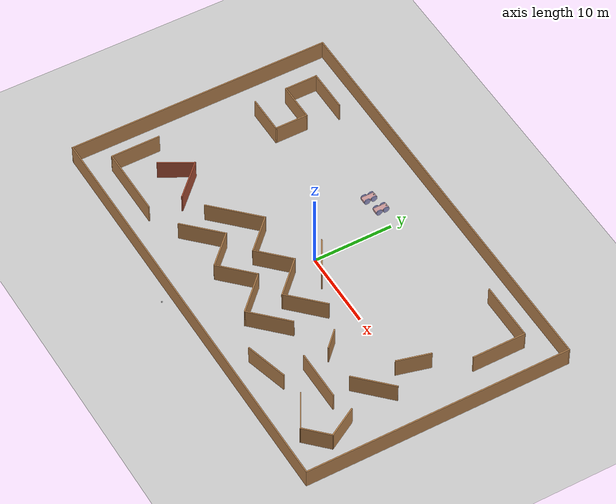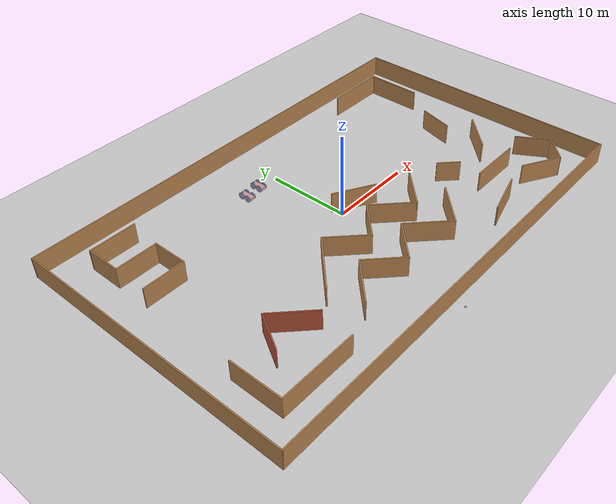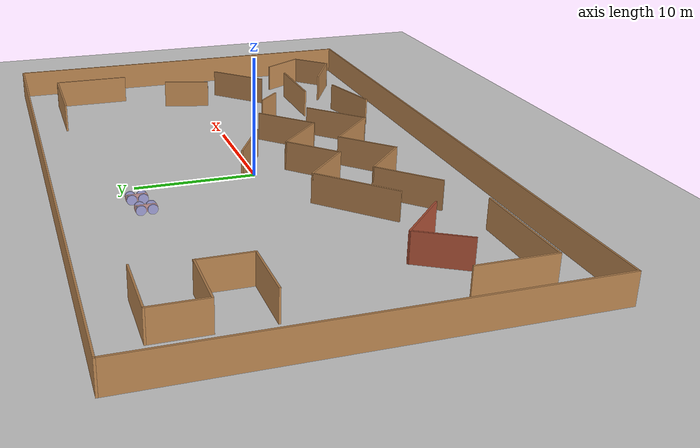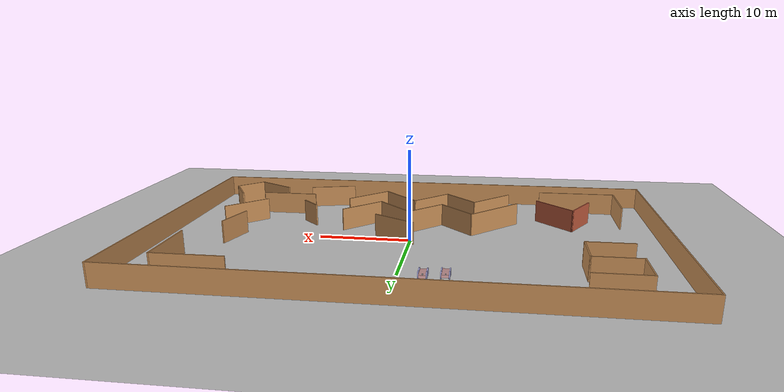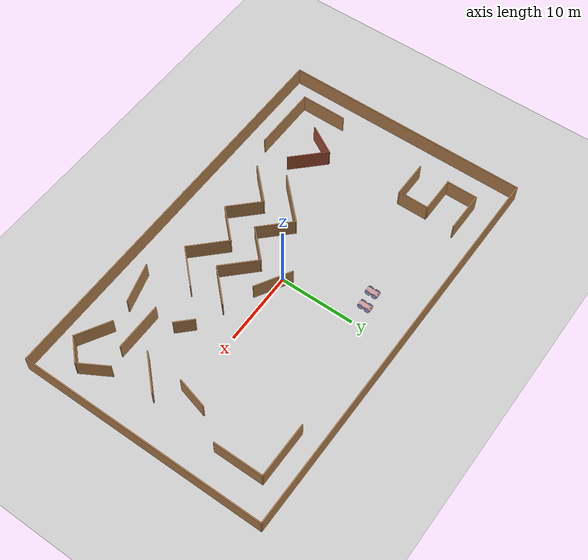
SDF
<sdf version="1.6">
 <world name="default">
  <plugin name="hello" filename="libhello.so"/>
  <light name="sun" type="directional">
   <pose>0 0 10 0 -0 0</pose>
   <diffuse>0.8 0.8 0.8 1</diffuse>
   <specular>0.2 0.2 0.2 1</specular>
   <attenuation>
    <range>1000</range>
    <constant>0.9</constant>
    <linear>0.01</linear>
    <quadratic>0.001</quadratic>
   </attenuation>
   <direction>-0.5 0.1 -0.9</direction>
  </light>
  <model name="ground_plane">
   <static>1</static>
   <link name="link">
    <collision name="collision">
     <geometry><plane><normal>0 0 1</normal><size>100 100</size></plane></geometry>
     <surface>
      <contact><collide_bitmask>65535</collide_bitmask></contact>
      <friction><ode><mu>100</mu><mu2>50</mu2></ode></friction>
     </surface>
    </collision>
    <visual name="visual">
     <cast_shadows>0</cast_shadows>
     <geometry><plane><normal>0 0 1</normal><size>100 100</size></plane></geometry>
     <material>
      <script><uri>file://media/materials/scripts/gazebo.material</uri><name>Gazebo/Grey</name></script>
     </material>
    </visual>
   </link>
  </model>
  <gravity>0 0 -9.8</gravity>
  <magnetic_field>6e-06 2.3e-05 -4.2e-05</magnetic_field>
  <atmosphere type="adiabatic"/>
  <physics name="default_physics" default="0" type="ode">
   <max_step_size>0.001</max_step_size>
   <real_time_factor>1</real_time_factor>
   <real_time_update_rate>1000</real_time_update_rate>
  </physics>
  <scene><ambient>0.4 0.4 0.4 1</ambient><background>0.7 0.7 0.7 1</background><shadows>1</shadows></scene>
  <spherical_coordinates>
   <surface_model>EARTH_WGS84</surface_model>
   <latitude_deg>0</latitude_deg>
   <longitude_deg>0</longitude_deg>
   <elevation>0</elevation>
   <heading_deg>0</heading_deg>
  </spherical_coordinates>
  <model name="Building">
   <pose>0.0233 -0.008148 0 0 -0 0</pose>
   <link name="Wall_0">
    <collision name="Wall_0_Collision">
     <geometry><box><size>33.5 0.15 2.5</size></box></geometry>
     <pose>0 0 1.25 0 -0 0</pose>
    </collision>
    <visual name="Wall_0_Visual">
     <pose>0 0 1.25 0 -0 0</pose>
     <geometry><box><size>33.5 0.15 2.5</size></box></geometry>
     <material>
      <script><uri>file://media/materials/scripts/gazebo.material</uri><name>Gazebo/Wood</name></script>
      <ambient>1 1 1 1</ambient>
     </material>
     <meta><layer>0</layer></meta>
    </visual>
    <pose>-26.925 0 0 0 0 -1.5708</pose>
   </link>
   <link name="Wall_1">
    <collision name="Wall_1_Collision">
     <geometry><box><size>54 0.15 2.5</size></box></geometry>
     <pose>0 0 1.25 0 -0 0</pose>
    </collision>
    <visual name="Wall_1_Visual">
     <pose>0 0 1.25 0 -0 0</pose>
     <geometry><box><size>54 0.15 2.5</size></box></geometry>
     <material>
      <script><uri>file://media/materials/scripts/gazebo.material</uri><name>Gazebo/Wood</name></script>
      <ambient>1 1 1 1</ambient>
     </material>
     <meta><layer>0</layer></meta>
    </visual>
    <pose>1e-06 -16.675 0 0 -0 0</pose>
   </link>
   <link name="Wall_10">
    <collision name="Wall_10_Collision">
     <geometry><box><size>4.25 0.15 2.5</size></box></geometry>
     <pose>0 0 1.25 0 -0 0</pose>
    </collision>
    <visual name="Wall_10_Visual">
     <pose>0 0 1.25 0 -0 0</pose>
     <geometry><box><size>4.25 0.15 2.5</size></box></geometry>
     <material>
      <script><uri>file://media/materials/scripts/gazebo.material</uri><name>Gazebo/Wood</name></script>
      <ambient>1 1 1 1</ambient>
     </material>
     <meta><layer>0</layer></meta>
    </visual>
    <pose>23.0574 -9.96981 0 0 -0 2.0944</pose>
   </link>
   <link name="Wall_13">
    <collision name="Wall_13_Collision">
     <geometry><box><size>5.5 0.15 2.5</size></box></geometry>
     <pose>0 0 1.25 0 -0 0</pose>
    </collision>
    <visual name="Wall_13_Visual">
     <pose>0 0 1.25 0 -0 0</pose>
     <geometry><box><size>5.5 0.15 2.5</size></box></geometry>
     <material>
      <script><uri>file://media/materials/scripts/gazebo.material</uri><name>Gazebo/Wood</name></script>
      <ambient>0.996078 0.47451 0.0196078 1</ambient>
     </material>
     <meta><layer>0</layer></meta>
    </visual>
    <pose>-19.9616 13.3063 0 0 -0 3.14159</pose>
   </link>
   <link name="Wall_14">
    <collision name="Wall_14_Collision">
     <geometry><box><size>4.25 0.15 2.5</size></box></geometry>
     <pose>0 0 1.25 0 -0 0</pose>
    </collision>
    <visual name="Wall_14_Visual">
     <pose>0 0 1.25 0 -0 0</pose>
     <geometry><box><size>4.25 0.15 2.5</size></box></geometry>
     <material>
      <script><uri>file://media/materials/scripts/gazebo.material</uri><name>Gazebo/Wood</name></script>
      <ambient>0.996078 0.47451 0.0196078 1</ambient>
     </material>
     <meta><layer>0</layer></meta>
    </visual>
    <pose>-22.6366 11.2563 0 0 0 -1.5708</pose>
   </link>
   <link name="Wall_15">
    <collision name="Wall_15_Collision">
     <geometry><box><size>5 0.15 2.5</size></box></geometry>
     <pose>0 0 1.25 0 -0 0</pose>
    </collision>
    <visual name="Wall_15_Visual">
     <pose>0 0 1.25 0 -0 0</pose>
     <geometry><box><size>5 0.15 2.5</size></box></geometry>
     <material>
      <script><uri>file://media/materials/scripts/gazebo.material</uri><name>Gazebo/Wood</name></script>
      <ambient>0.996078 0.47451 0.0196078 1</ambient>
     </material>
     <meta><layer>0</layer></meta>
    </visual>
    <pose>-20.2116 9.20626 0 0 -0 0</pose>
   </link>
   <link name="Wall_16">
    <collision name="Wall_16_Collision">
     <geometry><box><size>4.25 0.15 2.5</size></box></geometry>
     <pose>0 0 1.25 0 -0 0</pose>
    </collision>
    <visual name="Wall_16_Visual">
     <pose>0 0 1.25 0 -0 0</pose>
     <geometry><box><size>4.25 0.15 2.5</size></box></geometry>
     <material>
      <script><uri>file://media/materials/scripts/gazebo.material</uri><name>Gazebo/Wood</name></script>
      <ambient>0.996078 0.47451 0.0196078 1</ambient>
     </material>
     <meta><layer>0</layer></meta>
    </visual>
    <pose>-17.7867 7.15626 0 0 0 -1.5708</pose>
   </link>
   <link name="Wall_17">
    <collision name="Wall_17_Collision">
     <geometry><box><size>5 0.15 2.5</size></box></geometry>
     <pose>0 0 1.25 0 -0 0</pose>
    </collision>
    <visual name="Wall_17_Visual">
     <pose>0 0 1.25 0 -0 0</pose>
     <geometry><box><size>5 0.15 2.5</size></box></geometry>
     <material>
      <script><uri>file://media/materials/scripts/gazebo.material</uri><name>Gazebo/Wood</name></script>
      <ambient>0.996078 0.47451 0.0196078 1</ambient>
     </material>
     <meta><layer>0</layer></meta>
    </visual>
    <pose>-20.2116 5.10626 0 0 -0 3.14159</pose>
   </link>
   <link name="Wall_19">
    <collision name="Wall_19_Collision">
     <geometry><box><size>4.5 0.15 2.5</size></box></geometry>
     <pose>0 0 1.25 0 -0 0</pose>
    </collision>
    <visual name="Wall_19_Visual">
     <pose>0 0 1.25 0 -0 0</pose>
     <geometry><box><size>4.5 0.15 2.5</size></box></geometry>
     <material>
      <script><uri>file://media/materials/scripts/gazebo.material</uri><name>Gazebo/Bricks</name></script>
      <ambient>1 1 1 1</ambient>
     </material>
     <meta><layer>0</layer></meta>
    </visual>
    <pose>-18.9129 -7.45558 0 0 -0 1.0472</pose>
   </link>
   <link name="Wall_2">
    <collision name="Wall_2_Collision">
     <geometry><box><size>33.5 0.15 2.5</size></box></geometry>
     <pose>0 0 1.25 0 -0 0</pose>
    </collision>
    <visual name="Wall_2_Visual">
     <pose>0 0 1.25 0 -0 0</pose>
     <geometry><box><size>33.5 0.15 2.5</size></box></geometry>
     <material>
      <script><uri>file://media/materials/scripts/gazebo.material</uri><name>Gazebo/Wood</name></script>
      <ambient>1 1 1 1</ambient>
     </material>
     <meta><layer>0</layer></meta>
    </visual>
    <pose>26.925 0 0 0 -0 1.5708</pose>
   </link>
   <link name="Wall_20">
    <collision name="Wall_20_Collision">
     <geometry><box><size>5.5 0.15 2.5</size></box></geometry>
     <pose>0 0 1.25 0 -0 0</pose>
    </collision>
    <visual name="Wall_20_Visual">
     <pose>0 0 1.25 0 -0 0</pose>
     <geometry><box><size>5.5 0.15 2.5</size></box></geometry>
     <material>
      <script><uri>file://media/materials/scripts/gazebo.material</uri><name>Gazebo/Bricks</name></script>
      <ambient>1 1 1 1</ambient>
     </material>
     <meta><layer>0</layer></meta>
    </visual>
    <pose>-15.9338 -7.46349 0 0 0 -0.785398</pose>
   </link>
   <link name="Wall_22">
    <collision name="Wall_22_Collision">
     <geometry><box><size>5.75 0.15 2.5</size></box></geometry>
     <pose>0 0 1.25 0 -0 0</pose>
    </collision>
    <visual name="Wall_22_Visual">
     <pose>0 0 1.25 0 -0 0</pose>
     <geometry><box><size>5.75 0.15 2.5</size></box></geometry>
     <material>
      <script><uri>file://media/materials/scripts/gazebo.material</uri><name>Gazebo/Wood</name></script>
      <ambient>0.435294 0.796078 0.67451 1</ambient>
     </material>
     <meta><layer>0</layer></meta>
    </visual>
    <pose>-8.66284 -9.69869 0 0 -0 0.785398</pose>
   </link>
   <link name="Wall_23">
    <collision name="Wall_23_Collision">
     <geometry><box><size>5 0.15 2.5</size></box></geometry>
     <pose>0 0 1.25 0 -0 0</pose>
    </collision>
    <visual name="Wall_23_Visual">
     <pose>0 0 1.25 0 -0 0</pose>
     <geometry><box><size>5 0.15 2.5</size></box></geometry>
     <material>
      <script><uri>file://media/materials/scripts/gazebo.material</uri><name>Gazebo/Wood</name></script>
      <ambient>0.435294 0.796078 0.67451 1</ambient>
     </material>
     <meta><layer>0</layer></meta>
    </visual>
    <pose>-4.96821 -9.43353 0 0 0 -0.785398</pose>
   </link>
   <link name="Wall_24">
    <collision name="Wall_24_Collision">
     <geometry><box><size>5.25 0.15 2.5</size></box></geometry>
     <pose>0 0 1.25 0 -0 0</pose>
    </collision>
    <visual name="Wall_24_Visual">
     <pose>0 0 1.25 0 -0 0</pose>
     <geometry><box><size>5.25 0.15 2.5</size></box></geometry>
     <material>
      <script><uri>file://media/materials/scripts/gazebo.material</uri><name>Gazebo/Wood</name></script>
      <ambient>0.435294 0.796078 0.67451 1</ambient>
     </material>
     <meta><layer>0</layer></meta>
    </visual>
    <pose>-1.45035 -9.34514 0 0 -0 0.785398</pose>
   </link>
   <link name="Wall_25">
    <collision name="Wall_25_Collision">
     <geometry><box><size>5.75 0.15 2.5</size></box></geometry>
     <pose>0 0 1.25 0 -0 0</pose>
    </collision>
    <visual name="Wall_25_Visual">
     <pose>0 0 1.25 0 -0 0</pose>
     <geometry><box><size>5.75 0.15 2.5</size></box></geometry>
     <material>
      <script><uri>file://media/materials/scripts/gazebo.material</uri><name>Gazebo/Wood</name></script>
      <ambient>0.435294 0.796078 0.67451 1</ambient>
     </material>
     <meta><layer>0</layer></meta>
    </visual>
    <pose>2.33267 -9.52192 0 0 0 -0.785398</pose>
   </link>
   <link name="Wall_26">
    <collision name="Wall_26_Collision">
     <geometry><box><size>5.75 0.15 2.5</size></box></geometry>
     <pose>0 0 1.25 0 -0 0</pose>
    </collision>
    <visual name="Wall_26_Visual">
     <pose>0 0 1.25 0 -0 0</pose>
     <geometry><box><size>5.75 0.15 2.5</size></box></geometry>
     <material>
      <script><uri>file://media/materials/scripts/gazebo.material</uri><name>Gazebo/Wood</name></script>
      <ambient>0.435294 0.796078 0.67451 1</ambient>
     </material>
     <meta><layer>0</layer></meta>
    </visual>
    <pose>6.29247 -9.52192 0 0 -0 0.785398</pose>
   </link>
   <link name="Wall_29">
    <collision name="Wall_29_Collision">
     <geometry><box><size>7.25 0.15 2.5</size></box></geometry>
     <pose>0 0 1.25 0 -0 0</pose>
    </collision>
    <visual name="Wall_29_Visual">
     <pose>0 0 1.25 0 -0 0</pose>
     <geometry><box><size>7.25 0.15 2.5</size></box></geometry>
     <material>
      <script><uri>file://media/materials/scripts/gazebo.material</uri><name>Gazebo/Wood</name></script>
      <ambient>0.435294 0.796078 0.67451 1</ambient>
     </material>
     <meta><layer>0</layer></meta>
    </visual>
    <pose>-9.06827 -5.23816 0 0 -0 0.785398</pose>
   </link>
   <link name="Wall_3">
    <collision name="Wall_3_Collision">
     <geometry><box><size>54 0.15 2.5</size></box></geometry>
     <pose>0 0 1.25 0 -0 0</pose>
    </collision>
    <visual name="Wall_3_Visual">
     <pose>0 0 1.25 0 -0 0</pose>
     <geometry><box><size>54 0.15 2.5</size></box></geometry>
     <material>
      <script><uri>file://media/materials/scripts/gazebo.material</uri><name>Gazebo/Wood</name></script>
      <ambient>1 1 1 1</ambient>
     </material>
     <meta><layer>0</layer></meta>
    </visual>
    <pose>1e-06 16.675 0 0 -0 3.14159</pose>
   </link>
   <link name="Wall_30">
    <collision name="Wall_30_Collision">
     <geometry><box><size>5.25 0.15 2.5</size></box></geometry>
     <pose>0 0 1.25 0 -0 0</pose>
    </collision>
    <visual name="Wall_30_Visual">
     <pose>0 0 1.25 0 -0 0</pose>
     <geometry><box><size>5.25 0.15 2.5</size></box></geometry>
     <material>
      <script><uri>file://media/materials/scripts/gazebo.material</uri><name>Gazebo/Wood</name></script>
      <ambient>0.435294 0.796078 0.67451 1</ambient>
     </material>
     <meta><layer>0</layer></meta>
    </visual>
    <pose>-4.75492 -4.53106 0 0 0 -0.785398</pose>
   </link>
   <link name="Wall_31">
    <collision name="Wall_31_Collision">
     <geometry><box><size>5 0.15 2.5</size></box></geometry>
     <pose>0 0 1.25 0 -0 0</pose>
    </collision>
    <visual name="Wall_31_Visual">
     <pose>0 0 1.25 0 -0 0</pose>
     <geometry><box><size>5 0.15 2.5</size></box></geometry>
     <material>
      <script><uri>file://media/materials/scripts/gazebo.material</uri><name>Gazebo/Wood</name></script>
      <ambient>0.435294 0.796078 0.67451 1</ambient>
     </material>
     <meta><layer>0</layer></meta>
    </visual>
    <pose>-1.23706 -4.61944 0 0 -0 0.785398</pose>
   </link>
   <link name="Wall_32">
    <collision name="Wall_32_Collision">
     <geometry><box><size>5.5 0.15 2.5</size></box></geometry>
     <pose>0 0 1.25 0 -0 0</pose>
    </collision>
    <visual name="Wall_32_Visual">
     <pose>0 0 1.25 0 -0 0</pose>
     <geometry><box><size>5.5 0.15 2.5</size></box></geometry>
     <material>
      <script><uri>file://media/materials/scripts/gazebo.material</uri><name>Gazebo/Wood</name></script>
      <ambient>0.435294 0.796078 0.67451 1</ambient>
     </material>
     <meta><layer>0</layer></meta>
    </visual>
    <pose>2.36918 -4.79622 0 0 0 -0.785398</pose>
   </link>
   <link name="Wall_33">
    <collision name="Wall_33_Collision">
     <geometry><box><size>5.5 0.15 2.5</size></box></geometry>
     <pose>0 0 1.25 0 -0 0</pose>
    </collision>
    <visual name="Wall_33_Visual">
     <pose>0 0 1.25 0 -0 0</pose>
     <geometry><box><size>5.5 0.15 2.5</size></box></geometry>
     <material>
      <script><uri>file://media/materials/scripts/gazebo.material</uri><name>Gazebo/Wood</name></script>
      <ambient>0.435294 0.796078 0.67451 1</ambient>
     </material>
     <meta><layer>0</layer></meta>
    </visual>
    <pose>6.1522 -4.79622 0 0 -0 0.785398</pose>
   </link>
   <link name="Wall_35">
    <collision name="Wall_35_Collision">
     <geometry><box><size>5.5 0.15 2.5</size></box></geometry>
     <pose>0 0 1.25 0 -0 0</pose>
    </collision>
    <visual name="Wall_35_Visual">
     <pose>0 0 1.25 0 -0 0</pose>
     <geometry><box><size>5.5 0.15 2.5</size></box></geometry>
     <material>
      <script><uri>file://media/materials/scripts/gazebo.material</uri><name>Gazebo/Wood</name></script>
      <ambient>1 1 1 1</ambient>
     </material>
     <meta><layer>0</layer></meta>
    </visual>
    <pose>19.9767 -4.17251 0 0 -0 0.785398</pose>
   </link>
   <link name="Wall_37">
    <collision name="Wall_37_Collision">
     <geometry><box><size>6.5 0.15 2.5</size></box></geometry>
     <pose>0 0 1.25 0 -0 0</pose>
    </collision>
    <visual name="Wall_37_Visual">
     <pose>0 0 1.25 0 -0 0</pose>
     <geometry><box><size>6.5 0.15 2.5</size></box></geometry>
     <material>
      <script><uri>file://media/materials/scripts/gazebo.material</uri><name>Gazebo/Wood</name></script>
      <ambient>1 1 1 1</ambient>
     </material>
     <meta><layer>0</layer></meta>
    </visual>
    <pose>16.2202 -8.96488 0 0 -0 3.14159</pose>
   </link>
   <link name="Wall_39">
    <collision name="Wall_39_Collision">
     <geometry><box><size>5.5 0.15 2.5</size></box></geometry>
     <pose>0 0 1.25 0 -0 0</pose>
    </collision>
    <visual name="Wall_39_Visual">
     <pose>0 0 1.25 0 -0 0</pose>
     <geometry><box><size>5.5 0.15 2.5</size></box></geometry>
     <material>
      <script><uri>file://media/materials/scripts/gazebo.material</uri><name>Gazebo/Wood</name></script>
      <ambient>1 1 1 1</ambient>
     </material>
     <meta><layer>0</layer></meta>
    </visual>
    <pose>11.6647 -12.9324 0 0 0 -2.87979</pose>
   </link>
   <link name="Wall_41">
    <collision name="Wall_41_Collision">
     <geometry><box><size>2.75 0.15 2.5</size></box></geometry>
     <pose>0 0 1.25 0 -0 0</pose>
    </collision>
    <visual name="Wall_41_Visual">
     <pose>0 0 1.25 0 -0 0</pose>
     <geometry><box><size>2.75 0.15 2.5</size></box></geometry>
     <material>
      <script><uri>file://media/materials/scripts/gazebo.material</uri><name>Gazebo/Wood</name></script>
      <ambient>1 1 1 1</ambient>
     </material>
     <meta><layer>0</layer></meta>
    </visual>
    <pose>12.4871 -5.14478 0 0 -0 2.35619</pose>
   </link>
   <link name="Wall_43">
    <collision name="Wall_43_Collision">
     <geometry><box><size>4.25 0.15 2.5</size></box></geometry>
     <pose>0 0 1.25 0 -0 0</pose>
    </collision>
    <visual name="Wall_43_Visual">
     <pose>0 0 1.25 0 -0 0</pose>
     <geometry><box><size>4.25 0.15 2.5</size></box></geometry>
     <material>
      <script><uri>file://media/materials/scripts/gazebo.material</uri><name>Gazebo/Wood</name></script>
      <ambient>1 1 1 1</ambient>
     </material>
     <meta><layer>0</layer></meta>
    </visual>
    <pose>19.2708 1.34355 0 0 -0 1.309</pose>
   </link>
   <link name="Wall_45">
    <collision name="Wall_45_Collision">
     <geometry><box><size>5.25 0.15 2.5</size></box></geometry>
     <pose>0 0 1.25 0 -0 0</pose>
    </collision>
    <visual name="Wall_45_Visual">
     <pose>0 0 1.25 0 -0 0</pose>
     <geometry><box><size>5.25 0.15 2.5</size></box></geometry>
     <material>
      <script><uri>file://media/materials/scripts/gazebo.material</uri><name>Gazebo/Wood</name></script>
      <ambient>1 1 1 1</ambient>
     </material>
     <meta><layer>0</layer></meta>
    </visual>
    <pose>1.76543 -0.133651 0 0 0 -0.523599</pose>
   </link>
   <link name="Wall_48">
    <collision name="Wall_48_Collision">
     <geometry><box><size>6.75 0.15 2.5</size></box></geometry>
     <pose>0 0 1.25 0 -0 0</pose>
    </collision>
    <visual name="Wall_48_Visual">
     <pose>0 0 1.25 0 -0 0</pose>
     <geometry><box><size>6.75 0.15 2.5</size></box></geometry>
     <material>
      <script><uri>file://media/materials/scripts/gazebo.material</uri><name>Gazebo/Wood</name></script>
      <ambient>0.996078 0.47451 0.0196078 1</ambient>
     </material>
     <meta><layer>0</layer></meta>
    </visual>
    <pose>22.5768 10.3367 0 0 -0 1.5708</pose>
   </link>
   <link name="Wall_49">
    <collision name="Wall_49_Collision">
     <geometry><box><size>7.5 0.15 2.5</size></box></geometry>
     <pose>0 0 1.25 0 -0 0</pose>
    </collision>
    <visual name="Wall_49_Visual">
     <pose>0 0 1.25 0 -0 0</pose>
     <geometry><box><size>7.5 0.15 2.5</size></box></geometry>
     <material>
      <script><uri>file://media/materials/scripts/gazebo.material</uri><name>Gazebo/Wood</name></script>
      <ambient>0.996078 0.47451 0.0196078 1</ambient>
     </material>
     <meta><layer>0</layer></meta>
    </visual>
    <pose>18.9018 13.6367 0 0 -0 3.14159</pose>
   </link>
   <link name="Wall_5">
    <collision name="Wall_5_Collision">
     <geometry><box><size>6.25 0.15 2.5</size></box></geometry>
     <pose>0 0 1.25 0 -0 0</pose>
    </collision>
    <visual name="Wall_5_Visual">
     <pose>0 0 1.25 0 -0 0</pose>
     <geometry><box><size>6.25 0.15 2.5</size></box></geometry>
     <material>
      <script><uri>file://media/materials/scripts/gazebo.material</uri><name>Gazebo/Wood</name></script>
      <ambient>1 1 1 1</ambient>
     </material>
     <meta><layer>0</layer></meta>
    </visual>
    <pose>-23.4627 -10.3305 0 0 0 -1.5708</pose>
   </link>
   <link name="Wall_6">
    <collision name="Wall_6_Collision">
     <geometry><box><size>9 0.15 2.5</size></box></geometry>
     <pose>0 0 1.25 0 -0 0</pose>
    </collision>
    <visual name="Wall_6_Visual">
     <pose>0 0 1.25 0 -0 0</pose>
     <geometry><box><size>9 0.15 2.5</size></box></geometry>
     <material>
      <script><uri>file://media/materials/scripts/gazebo.material</uri><name>Gazebo/Wood</name></script>
      <ambient>1 1 1 1</ambient>
     </material>
     <meta><layer>0</layer></meta>
    </visual>
    <pose>-19.0377 -13.3805 0 0 -0 0</pose>
   </link>
   <link name="Wall_8">
    <collision name="Wall_8_Collision">
     <geometry><box><size>5 0.15 2.5</size></box></geometry>
     <pose>0 0 1.25 0 -0 0</pose>
    </collision>
    <visual name="Wall_8_Visual">
     <pose>0 0 1.25 0 -0 0</pose>
     <geometry><box><size>5 0.15 2.5</size></box></geometry>
     <material>
      <script><uri>file://media/materials/scripts/gazebo.material</uri><name>Gazebo/Wood</name></script>
      <ambient>1 1 1 1</ambient>
     </material>
     <meta><layer>0</layer></meta>
    </visual>
    <pose>19.4367 -13.0782 0 0 0 -0.523599</pose>
   </link>
   <link name="Wall_9">
    <collision name="Wall_9_Collision">
     <geometry><box><size>3.75 0.15 2.5</size></box></geometry>
     <pose>0 0 1.25 0 -0 0</pose>
    </collision>
    <visual name="Wall_9_Visual">
     <pose>0 0 1.25 0 -0 0</pose>
     <geometry><box><size>3.75 0.15 2.5</size></box></geometry>
     <material>
      <script><uri>file://media/materials/scripts/gazebo.material</uri><name>Gazebo/Wood</name></script>
      <ambient>1 1 1 1</ambient>
     </material>
     <meta><layer>0</layer></meta>
    </visual>
    <pose>22.8096 -13.018 0 0 -0 0.785398</pose>
   </link>
   <static>1</static>
  </model>
  <model name="Robot">
   <link name="link_0">
    <pose>0.00675 -0.118334 -0.032195 0 -0 0</pose>
    <inertial>
     <mass>0.306123</mass>
     <inertia>
      <ixx>0.0616903</ixx>
      <ixy>0</ixy>
      <ixz>0</ixz>
      <iyy>0.0154129</iyy>
      <iyz>0</iyz>
      <izz>0.0732404</izz>
     </inertia>
    </inertial>
    <visual name="visual">
     <geometry><box><size>0.7 1.7 0.3</size></box></geometry>
     <material>
      <lighting>1</lighting>
      <script><uri>file://media/materials/scripts/gazebo.material</uri><name>Gazebo/Grey</name></script>
      <shader type="pixel"><normal_map>__default__</normal_map></shader>
      <ambient>0.4 0.2 0.2 1</ambient>
      <diffuse>0.8 0.6 0.6 1</diffuse>
      <specular>0.11 0 0 1</specular>
      <emissive>0 0 0 1</emissive>
     </material>
    </visual>
    <collision name="collision">
     <geometry><box><size>0.7 1.7 0.3</size></box></geometry>
     <surface>
      <friction>
       <ode><mu>1</mu><mu2>1</mu2><fdir1>0 0 0</fdir1><slip1>0</slip1><slip2>0</slip2></ode>
       <torsional>
        <coefficient>1</coefficient>
        <patch_radius>0</patch_radius>
        <surface_radius>0</surface_radius>
        <use_patch_radius>1</use_patch_radius>
        <ode><slip>0</slip></ode>
       </torsional>
      </friction>
      <bounce><restitution_coefficient>0</restitution_coefficient><threshold>1e+06</threshold></bounce>
      <contact>
       <collide_without_contact>0</collide_without_contact>
       <collide_without_contact_bitmask>1</collide_without_contact_bitmask>
       <collide_bitmask>1</collide_bitmask>
       <ode>
        <soft_cfm>0</soft_cfm>
        <soft_erp>0.2</soft_erp>
        <kp>1e+13</kp>
        <kd>1</kd>
        <max_vel>0.01</max_vel>
        <min_depth>0</min_depth>
       </ode>
       <bullet>
        <split_impulse>1</split_impulse>
        <split_impulse_penetration_threshold>-0.01</split_impulse_penetration_threshold>
        <soft_cfm>0</soft_cfm>
        <soft_erp>0.2</soft_erp>
        <kp>1e+13</kp>
        <kd>1</kd>
       </bullet>
      </contact>
     </surface>
    </collision>
   </link>
   <link name="link_1_clone">
    <pose>-0.393289 -0.568334 -0.032195 0 1.5707 0</pose>
    <inertial>
     <mass>1</mass>
     <inertia><ixx>0.145833</ixx><ixy>0</ixy><ixz>0</ixz><iyy>0.145833</iyy><iyz>0</iyz><izz>0.125</izz></inertia>
    </inertial>
    <visual name="visual">
     <geometry><cylinder><radius>0.4</radius><length>0.1</length></cylinder></geometry>
     <material>
      <lighting>1</lighting>
      <script><uri>file://media/materials/scripts/gazebo.material</uri><name>Gazebo/Grey</name></script>
      <shader type="pixel"><normal_map>__default__</normal_map></shader>
      <ambient>0.2 0.2 0.4 1</ambient>
      <diffuse>0.6 0.6 0.8 1</diffuse>
      <specular>0 0 0.11 1</specular>
      <emissive>0 0 0 1</emissive>
     </material>
    </visual>
    <collision name="collision">
     <geometry><cylinder><radius>0.4</radius><length>0.1</length></cylinder></geometry>
     <surface>
      <friction>
       <ode><mu>1</mu><mu2>1</mu2><fdir1>0 0 0</fdir1><slip1>0</slip1><slip2>0</slip2></ode>
       <torsional>
        <coefficient>1</coefficient>
        <patch_radius>0</patch_radius>
        <surface_radius>0</surface_radius>
        <use_patch_radius>1</use_patch_radius>
        <ode><slip>0</slip></ode>
       </torsional>
      </friction>
      <bounce><restitution_coefficient>0</restitution_coefficient><threshold>1e+06</threshold></bounce>
      <contact>
       <collide_without_contact>0</collide_without_contact>
       <collide_without_contact_bitmask>1</collide_without_contact_bitmask>
       <collide_bitmask>1</collide_bitmask>
       <ode>
        <soft_cfm>0</soft_cfm>
        <soft_erp>0.2</soft_erp>
        <kp>1e+13</kp>
        <kd>1</kd>
        <max_vel>0.01</max_vel>
        <min_depth>0</min_depth>
       </ode>
       <bullet>
        <split_impulse>1</split_impulse>
        <split_impulse_penetration_threshold>-0.01</split_impulse_penetration_threshold>
        <soft_cfm>0</soft_cfm>
        <soft_erp>0.2</soft_erp>
        <kp>1e+13</kp>
        <kd>1</kd>
       </bullet>
      </contact>
     </surface>
    </collision>
   </link>
   <link name="link_1_clone_0">
    <pose>-0.393289 0.331666 -0.032195 0 1.5707 0</pose>
    <inertial>
     <mass>1</mass>
     <inertia><ixx>0.145833</ixx><ixy>0</ixy><ixz>0</ixz><iyy>0.145833</iyy><iyz>0</iyz><izz>0.125</izz></inertia>
    </inertial>
    <visual name="visual">
     <geometry><cylinder><radius>0.4</radius><length>0.1</length></cylinder></geometry>
     <material>
      <lighting>1</lighting>
      <script><uri>file://media/materials/scripts/gazebo.material</uri><name>Gazebo/Grey</name></script>
      <shader type="pixel"><normal_map>__default__</normal_map></shader>
      <ambient>0.2 0.2 0.4 1</ambient>
      <diffuse>0.6 0.6 0.8 1</diffuse>
      <specular>0 0 0.11 1</specular>
      <emissive>0 0 0 1</emissive>
     </material>
    </visual>
    <collision name="collision">
     <geometry><cylinder><radius>0.4</radius><length>0.1</length></cylinder></geometry>
     <surface>
      <friction>
       <ode><mu>1</mu><mu2>1</mu2><fdir1>0 0 0</fdir1><slip1>0</slip1><slip2>0</slip2></ode>
       <torsional>
        <coefficient>1</coefficient>
        <patch_radius>0</patch_radius>
        <surface_radius>0</surface_radius>
        <use_patch_radius>1</use_patch_radius>
        <ode><slip>0</slip></ode>
       </torsional>
      </friction>
      <bounce><restitution_coefficient>0</restitution_coefficient><threshold>1e+06</threshold></bounce>
      <contact>
       <collide_without_contact>0</collide_without_contact>
       <collide_without_contact_bitmask>1</collide_without_contact_bitmask>
       <collide_bitmask>1</collide_bitmask>
       <ode>
        <soft_cfm>0</soft_cfm>
        <soft_erp>0.2</soft_erp>
        <kp>1e+13</kp>
        <kd>1</kd>
        <max_vel>0.01</max_vel>
        <min_depth>0</min_depth>
       </ode>
       <bullet>
        <split_impulse>1</split_impulse>
        <split_impulse_penetration_threshold>-0.01</split_impulse_penetration_threshold>
        <soft_cfm>0</soft_cfm>
        <soft_erp>0.2</soft_erp>
        <kp>1e+13</kp>
        <kd>1</kd>
       </bullet>
      </contact>
     </surface>
    </collision>
   </link>
   <link name="link_1_clone_1">
    <pose>0.406789 -0.568334 -0.032195 0 1.5707 0</pose>
    <inertial>
     <mass>1</mass>
     <inertia><ixx>0.145833</ixx><ixy>0</ixy><ixz>0</ixz><iyy>0.145833</iyy><iyz>0</iyz><izz>0.125</izz></inertia>
    </inertial>
    <visual name="visual">
     <geometry><cylinder><radius>0.4</radius><length>0.1</length></cylinder></geometry>
     <material>
      <lighting>1</lighting>
      <script><uri>file://media/materials/scripts/gazebo.material</uri><name>Gazebo/Grey</name></script>
      <shader type="pixel"><normal_map>__default__</normal_map></shader>
      <ambient>0.2 0.2 0.4 1</ambient>
      <diffuse>0.6 0.6 0.8 1</diffuse>
      <specular>0 0 0.11 1</specular>
      <emissive>0 0 0 1</emissive>
     </material>
    </visual>
    <collision name="collision">
     <geometry><cylinder><radius>0.4</radius><length>0.1</length></cylinder></geometry>
     <surface>
      <friction>
       <ode><mu>1</mu><mu2>1</mu2><fdir1>0 0 0</fdir1><slip1>0</slip1><slip2>0</slip2></ode>
       <torsional>
        <coefficient>1</coefficient>
        <patch_radius>0</patch_radius>
        <surface_radius>0</surface_radius>
        <use_patch_radius>1</use_patch_radius>
        <ode><slip>0</slip></ode>
       </torsional>
      </friction>
      <bounce><restitution_coefficient>0</restitution_coefficient><threshold>1e+06</threshold></bounce>
      <contact>
       <collide_without_contact>0</collide_without_contact>
       <collide_without_contact_bitmask>1</collide_without_contact_bitmask>
       <collide_bitmask>1</collide_bitmask>
       <ode>
        <soft_cfm>0</soft_cfm>
        <soft_erp>0.2</soft_erp>
        <kp>1e+13</kp>
        <kd>1</kd>
        <max_vel>0.01</max_vel>
        <min_depth>0</min_depth>
       </ode>
       <bullet>
        <split_impulse>1</split_impulse>
        <split_impulse_penetration_threshold>-0.01</split_impulse_penetration_threshold>
        <soft_cfm>0</soft_cfm>
        <soft_erp>0.2</soft_erp>
        <kp>1e+13</kp>
        <kd>1</kd>
       </bullet>
      </contact>
     </surface>
    </collision>
   </link>
   <link name="link_1_clone_2">
    <pose>0.406789 0.331666 -0.032195 0 1.5707 0</pose>
    <inertial>
     <mass>1</mass>
     <inertia><ixx>0.145833</ixx><ixy>0</ixy><ixz>0</ixz><iyy>0.145833</iyy><iyz>0</iyz><izz>0.125</izz></inertia>
    </inertial>
    <visual name="visual">
     <geometry><cylinder><radius>0.4</radius><length>0.1</length></cylinder></geometry>
     <material>
      <lighting>1</lighting>
      <script><uri>file://media/materials/scripts/gazebo.material</uri><name>Gazebo/Grey</name></script>
      <shader type="pixel"><normal_map>__default__</normal_map></shader>
      <ambient>0.2 0.2 0.4 1</ambient>
      <diffuse>0.6 0.6 0.8 1</diffuse>
      <specular>0 0 0.11 1</specular>
      <emissive>0 0 0 1</emissive>
     </material>
    </visual>
    <collision name="collision">
     <geometry><cylinder><radius>0.4</radius><length>0.1</length></cylinder></geometry>
     <surface>
      <friction>
       <ode><mu>1</mu><mu2>1</mu2><fdir1>0 0 0</fdir1><slip1>0</slip1><slip2>0</slip2></ode>
       <torsional>
        <coefficient>1</coefficient>
        <patch_radius>0</patch_radius>
        <surface_radius>0</surface_radius>
        <use_patch_radius>1</use_patch_radius>
        <ode><slip>0</slip></ode>
       </torsional>
      </friction>
      <bounce><restitution_coefficient>0</restitution_coefficient><threshold>1e+06</threshold></bounce>
      <contact>
       <collide_without_contact>0</collide_without_contact>
       <collide_without_contact_bitmask>1</collide_without_contact_bitmask>
       <collide_bitmask>1</collide_bitmask>
       <ode>
        <soft_cfm>0</soft_cfm>
        <soft_erp>0.2</soft_erp>
        <kp>1e+13</kp>
        <kd>1</kd>
        <max_vel>0.01</max_vel>
        <min_depth>0</min_depth>
       </ode>
       <bullet>
        <split_impulse>1</split_impulse>
        <split_impulse_penetration_threshold>-0.01</split_impulse_penetration_threshold>
        <soft_cfm>0</soft_cfm>
        <soft_erp>0.2</soft_erp>
        <kp>1e+13</kp>
        <kd>1</kd>
       </bullet>
      </contact>
     </surface>
    </collision>
   </link>
   <link name="link_2">
    <pose>-0.033751 0.591666 0.160974 0 -0 0</pose>
    <inertial>
     <mass>0.00134124</mass>
     <inertia>
      <ixx>2.76975e-06</ixx>
      <ixy>0</ixy>
      <ixz>0</ixz>
      <iyy>2.38931e-06</iyy>
      <iyz>0</iyz>
      <izz>3.49279e-06</izz>
     </inertia>
    </inertial>
    <visual name="visual">
     <geometry><box><size>0.117996 0.131631 0.086336</size></box></geometry>
     <material>
      <lighting>1</lighting>
      <script><uri>file://media/materials/scripts/gazebo.material</uri><name>Gazebo/Grey</name></script>
      <shader type="pixel"/>
      <ambient>0.3 0.3 0.3 1</ambient>
      <diffuse>0.7 0.7 0.7 1</diffuse>
      <specular>0.01 0.01 0.01 1</specular>
      <emissive>0 0 0 1</emissive>
     </material>
    </visual>
    <collision name="collision">
     <geometry><box><size>0.117996 0.131631 0.086336</size></box></geometry>
     <surface>
      <friction>
       <ode><mu>1</mu><mu2>1</mu2><fdir1>0 0 0</fdir1><slip1>0</slip1><slip2>0</slip2></ode>
       <torsional>
        <coefficient>1</coefficient>
        <patch_radius>0</patch_radius>
        <surface_radius>0</surface_radius>
        <use_patch_radius>1</use_patch_radius>
        <ode><slip>0</slip></ode>
       </torsional>
      </friction>
      <bounce><restitution_coefficient>0</restitution_coefficient><threshold>1e+06</threshold></bounce>
      <contact>
       <collide_without_contact>0</collide_without_contact>
       <collide_without_contact_bitmask>1</collide_without_contact_bitmask>
       <collide_bitmask>1</collide_bitmask>
       <ode>
        <soft_cfm>0</soft_cfm>
        <soft_erp>0.2</soft_erp>
        <kp>1e+13</kp>
        <kd>1</kd>
        <max_vel>0.01</max_vel>
        <min_depth>0</min_depth>
       </ode>
       <bullet>
        <split_impulse>1</split_impulse>
        <split_impulse_penetration_threshold>-0.01</split_impulse_penetration_threshold>
        <soft_cfm>0</soft_cfm>
        <soft_erp>0.2</soft_erp>
        <kp>1e+13</kp>
        <kd>1</kd>
       </bullet>
      </contact>
     </surface>
    </collision>
   </link>
   <joint name="link_0_JOINT_2" type="revolute">
    <parent>link_0</parent>
    <child>link_1_clone_0</child>
    <axis>
     <xyz>0 0 1</xyz>
     <use_parent_model_frame>0</use_parent_model_frame>
     <limit>
      <lower>-1.79769e+308</lower>
      <upper>1.79769e+308</upper>
      <effort>-1</effort>
      <velocity>-1</velocity>
     </limit>
     <dynamics>
      <spring_reference>0</spring_reference>
      <spring_stiffness>0</spring_stiffness>
      <damping>0</damping>
     </dynamics>
    </axis>
    <physics>
     <ode><limit><cfm>0</cfm><erp>0.2</erp></limit><suspension><cfm>0</cfm><erp>0.2</erp></suspension></ode>
    </physics>
   </joint>
   <joint name="link_0_JOINT_3" type="revolute">
    <parent>link_0</parent>
    <child>link_1_clone</child>
    <axis>
     <xyz>0 0 1</xyz>
     <use_parent_model_frame>0</use_parent_model_frame>
     <limit>
      <lower>-1.79769e+308</lower>
      <upper>1.79769e+308</upper>
      <effort>-1</effort>
      <velocity>-1</velocity>
     </limit>
     <dynamics>
      <spring_reference>0</spring_reference>
      <spring_stiffness>0</spring_stiffness>
      <damping>0</damping>
     </dynamics>
    </axis>
    <physics>
     <ode><limit><cfm>0</cfm><erp>0.2</erp></limit><suspension><cfm>0</cfm><erp>0.2</erp></suspension></ode>
    </physics>
   </joint>
   <joint name="link_0_JOINT_4" type="revolute">
    <parent>link_0</parent>
    <child>link_1_clone_2</child>
    <axis>
     <xyz>0 0 1</xyz>
     <use_parent_model_frame>0</use_parent_model_frame>
     <limit>
      <lower>-1.79769e+308</lower>
      <upper>1.79769e+308</upper>
      <effort>-1</effort>
      <velocity>-1</velocity>
     </limit>
     <dynamics>
      <spring_reference>0</spring_reference>
      <spring_stiffness>0</spring_stiffness>
      <damping>0</damping>
     </dynamics>
    </axis>
    <physics>
     <ode><limit><cfm>0</cfm><erp>0.2</erp></limit><suspension><cfm>0</cfm><erp>0.2</erp></suspension></ode>
    </physics>
   </joint>
   <joint name="link_0_JOINT_5" type="revolute">
    <parent>link_0</parent>
    <child>link_1_clone_1</child>
    <axis>
     <xyz>0 0 1</xyz>
     <use_parent_model_frame>0</use_parent_model_frame>
     <limit>
      <lower>-1.79769e+308</lower>
      <upper>1.79769e+308</upper>
      <effort>-1</effort>
      <velocity>-1</velocity>
     </limit>
     <dynamics>
      <spring_reference>0</spring_reference>
      <spring_stiffness>0</spring_stiffness>
      <damping>0</damping>
     </dynamics>
    </axis>
    <physics>
     <ode><limit><cfm>0</cfm><erp>0.2</erp></limit><suspension><cfm>0</cfm><erp>0.2</erp></suspension></ode>
    </physics>
   </joint>
   <joint name="link_0_JOINT_6" type="fixed">
    <parent>link_0</parent>
    <child>link_2</child>
    <physics>
     <ode><limit><cfm>0</cfm><erp>0.2</erp></limit><suspension><cfm>0</cfm><erp>0.2</erp></suspension></ode>
    </physics>
   </joint>
   <static>0</static>
   <pose>-4.69109 10.0073 0.432199 1e-06 -0 -2.9e-05</pose>
  </model>
  <model name="Robot_0">
   <link name="link_0">
    <pose>0.00675 -0.118334 -0.032195 0 -0 0</pose>
    <inertial>
     <mass>0.306123</mass>
     <inertia>
      <ixx>0.0616903</ixx>
      <ixy>0</ixy>
      <ixz>0</ixz>
      <iyy>0.0154129</iyy>
      <iyz>0</iyz>
      <izz>0.0732404</izz>
     </inertia>
    </inertial>
    <visual name="visual">
     <geometry><box><size>0.7 1.7 0.3</size></box></geometry>
     <material>
      <lighting>1</lighting>
      <script><uri>file://media/materials/scripts/gazebo.material</uri><name>Gazebo/Grey</name></script>
      <shader type="pixel"><normal_map>__default__</normal_map></shader>
      <ambient>0.4 0.2 0.2 1</ambient>
      <diffuse>0.8 0.6 0.6 1</diffuse>
      <specular>0.11 0 0 1</specular>
      <emissive>0 0 0 1</emissive>
     </material>
    </visual>
    <collision name="collision">
     <geometry><box><size>0.7 1.7 0.3</size></box></geometry>
     <surface>
      <friction>
       <ode><mu>1</mu><mu2>1</mu2><fdir1>0 0 0</fdir1><slip1>0</slip1><slip2>0</slip2></ode>
       <torsional>
        <coefficient>1</coefficient>
        <patch_radius>0</patch_radius>
        <surface_radius>0</surface_radius>
        <use_patch_radius>1</use_patch_radius>
        <ode><slip>0</slip></ode>
       </torsional>
      </friction>
      <bounce><restitution_coefficient>0</restitution_coefficient><threshold>1e+06</threshold></bounce>
      <contact>
       <collide_without_contact>0</collide_without_contact>
       <collide_without_contact_bitmask>1</collide_without_contact_bitmask>
       <collide_bitmask>1</collide_bitmask>
       <ode>
        <soft_cfm>0</soft_cfm>
        <soft_erp>0.2</soft_erp>
        <kp>1e+13</kp>
        <kd>1</kd>
        <max_vel>0.01</max_vel>
        <min_depth>0</min_depth>
       </ode>
       <bullet>
        <split_impulse>1</split_impulse>
        <split_impulse_penetration_threshold>-0.01</split_impulse_penetration_threshold>
        <soft_cfm>0</soft_cfm>
        <soft_erp>0.2</soft_erp>
        <kp>1e+13</kp>
        <kd>1</kd>
       </bullet>
      </contact>
     </surface>
    </collision>
   </link>
   <link name="link_1_clone">
    <pose>-0.393289 -0.568334 -0.032195 0 1.5707 0</pose>
    <inertial>
     <mass>1</mass>
     <inertia><ixx>0.145833</ixx><ixy>0</ixy><ixz>0</ixz><iyy>0.145833</iyy><iyz>0</iyz><izz>0.125</izz></inertia>
    </inertial>
    <visual name="visual">
     <geometry><cylinder><radius>0.4</radius><length>0.1</length></cylinder></geometry>
     <material>
      <lighting>1</lighting>
      <script><uri>file://media/materials/scripts/gazebo.material</uri><name>Gazebo/Grey</name></script>
      <shader type="pixel"><normal_map>__default__</normal_map></shader>
      <ambient>0.2 0.2 0.4 1</ambient>
      <diffuse>0.6 0.6 0.8 1</diffuse>
      <specular>0 0 0.11 1</specular>
      <emissive>0 0 0 1</emissive>
     </material>
    </visual>
    <collision name="collision">
     <geometry><cylinder><radius>0.4</radius><length>0.1</length></cylinder></geometry>
     <surface>
      <friction>
       <ode><mu>1</mu><mu2>1</mu2><fdir1>0 0 0</fdir1><slip1>0</slip1><slip2>0</slip2></ode>
       <torsional>
        <coefficient>1</coefficient>
        <patch_radius>0</patch_radius>
        <surface_radius>0</surface_radius>
        <use_patch_radius>1</use_patch_radius>
        <ode><slip>0</slip></ode>
       </torsional>
      </friction>
      <bounce><restitution_coefficient>0</restitution_coefficient><threshold>1e+06</threshold></bounce>
      <contact>
       <collide_without_contact>0</collide_without_contact>
       <collide_without_contact_bitmask>1</collide_without_contact_bitmask>
       <collide_bitmask>1</collide_bitmask>
       <ode>
        <soft_cfm>0</soft_cfm>
        <soft_erp>0.2</soft_erp>
        <kp>1e+13</kp>
        <kd>1</kd>
        <max_vel>0.01</max_vel>
        <min_depth>0</min_depth>
       </ode>
       <bullet>
        <split_impulse>1</split_impulse>
        <split_impulse_penetration_threshold>-0.01</split_impulse_penetration_threshold>
        <soft_cfm>0</soft_cfm>
        <soft_erp>0.2</soft_erp>
        <kp>1e+13</kp>
        <kd>1</kd>
       </bullet>
      </contact>
     </surface>
    </collision>
   </link>
   <link name="link_1_clone_0">
    <pose>-0.393289 0.331666 -0.032195 0 1.5707 0</pose>
    <inertial>
     <mass>1</mass>
     <inertia><ixx>0.145833</ixx><ixy>0</ixy><ixz>0</ixz><iyy>0.145833</iyy><iyz>0</iyz><izz>0.125</izz></inertia>
    </inertial>
    <visual name="visual">
     <geometry><cylinder><radius>0.4</radius><length>0.1</length></cylinder></geometry>
     <material>
      <lighting>1</lighting>
      <script><uri>file://media/materials/scripts/gazebo.material</uri><name>Gazebo/Grey</name></script>
      <shader type="pixel"><normal_map>__default__</normal_map></shader>
      <ambient>0.2 0.2 0.4 1</ambient>
      <diffuse>0.6 0.6 0.8 1</diffuse>
      <specular>0 0 0.11 1</specular>
      <emissive>0 0 0 1</emissive>
     </material>
    </visual>
    <collision name="collision">
     <geometry><cylinder><radius>0.4</radius><length>0.1</length></cylinder></geometry>
     <surface>
      <friction>
       <ode><mu>1</mu><mu2>1</mu2><fdir1>0 0 0</fdir1><slip1>0</slip1><slip2>0</slip2></ode>
       <torsional>
        <coefficient>1</coefficient>
        <patch_radius>0</patch_radius>
        <surface_radius>0</surface_radius>
        <use_patch_radius>1</use_patch_radius>
        <ode><slip>0</slip></ode>
       </torsional>
      </friction>
      <bounce><restitution_coefficient>0</restitution_coefficient><threshold>1e+06</threshold></bounce>
      <contact>
       <collide_without_contact>0</collide_without_contact>
       <collide_without_contact_bitmask>1</collide_without_contact_bitmask>
       <collide_bitmask>1</collide_bitmask>
       <ode>
        <soft_cfm>0</soft_cfm>
        <soft_erp>0.2</soft_erp>
        <kp>1e+13</kp>
        <kd>1</kd>
        <max_vel>0.01</max_vel>
        <min_depth>0</min_depth>
       </ode>
       <bullet>
        <split_impulse>1</split_impulse>
        <split_impulse_penetration_threshold>-0.01</split_impulse_penetration_threshold>
        <soft_cfm>0</soft_cfm>
        <soft_erp>0.2</soft_erp>
        <kp>1e+13</kp>
        <kd>1</kd>
       </bullet>
      </contact>
     </surface>
    </collision>
   </link>
   <link name="link_1_clone_1">
    <pose>0.406789 -0.568334 -0.032195 0 1.5707 0</pose>
    <inertial>
     <mass>1</mass>
     <inertia><ixx>0.145833</ixx><ixy>0</ixy><ixz>0</ixz><iyy>0.145833</iyy><iyz>0</iyz><izz>0.125</izz></inertia>
    </inertial>
    <visual name="visual">
     <geometry><cylinder><radius>0.4</radius><length>0.1</length></cylinder></geometry>
     <material>
      <lighting>1</lighting>
      <script><uri>file://media/materials/scripts/gazebo.material</uri><name>Gazebo/Grey</name></script>
      <shader type="pixel"><normal_map>__default__</normal_map></shader>
      <ambient>0.2 0.2 0.4 1</ambient>
      <diffuse>0.6 0.6 0.8 1</diffuse>
      <specular>0 0 0.11 1</specular>
      <emissive>0 0 0 1</emissive>
     </material>
    </visual>
    <collision name="collision">
     <geometry><cylinder><radius>0.4</radius><length>0.1</length></cylinder></geometry>
     <surface>
      <friction>
       <ode><mu>1</mu><mu2>1</mu2><fdir1>0 0 0</fdir1><slip1>0</slip1><slip2>0</slip2></ode>
       <torsional>
        <coefficient>1</coefficient>
        <patch_radius>0</patch_radius>
        <surface_radius>0</surface_radius>
        <use_patch_radius>1</use_patch_radius>
        <ode><slip>0</slip></ode>
       </torsional>
      </friction>
      <bounce><restitution_coefficient>0</restitution_coefficient><threshold>1e+06</threshold></bounce>
      <contact>
       <collide_without_contact>0</collide_without_contact>
       <collide_without_contact_bitmask>1</collide_without_contact_bitmask>
       <collide_bitmask>1</collide_bitmask>
       <ode>
        <soft_cfm>0</soft_cfm>
        <soft_erp>0.2</soft_erp>
        <kp>1e+13</kp>
        <kd>1</kd>
        <max_vel>0.01</max_vel>
        <min_depth>0</min_depth>
       </ode>
       <bullet>
        <split_impulse>1</split_impulse>
        <split_impulse_penetration_threshold>-0.01</split_impulse_penetration_threshold>
        <soft_cfm>0</soft_cfm>
        <soft_erp>0.2</soft_erp>
        <kp>1e+13</kp>
        <kd>1</kd>
       </bullet>
      </contact>
     </surface>
    </collision>
   </link>
   <link name="link_1_clone_2">
    <pose>0.406789 0.331666 -0.032195 0 1.5707 0</pose>
    <inertial>
     <mass>1</mass>
     <inertia><ixx>0.145833</ixx><ixy>0</ixy><ixz>0</ixz><iyy>0.145833</iyy><iyz>0</iyz><izz>0.125</izz></inertia>
    </inertial>
    <visual name="visual">
     <geometry><cylinder><radius>0.4</radius><length>0.1</length></cylinder></geometry>
     <material>
      <lighting>1</lighting>
      <script><uri>file://media/materials/scripts/gazebo.material</uri><name>Gazebo/Grey</name></script>
      <shader type="pixel"><normal_map>__default__</normal_map></shader>
      <ambient>0.2 0.2 0.4 1</ambient>
      <diffuse>0.6 0.6 0.8 1</diffuse>
      <specular>0 0 0.11 1</specular>
      <emissive>0 0 0 1</emissive>
     </material>
    </visual>
    <collision name="collision">
     <geometry><cylinder><radius>0.4</radius><length>0.1</length></cylinder></geometry>
     <surface>
      <friction>
       <ode><mu>1</mu><mu2>1</mu2><fdir1>0 0 0</fdir1><slip1>0</slip1><slip2>0</slip2></ode>
       <torsional>
        <coefficient>1</coefficient>
        <patch_radius>0</patch_radius>
        <surface_radius>0</surface_radius>
        <use_patch_radius>1</use_patch_radius>
        <ode><slip>0</slip></ode>
       </torsional>
      </friction>
      <bounce><restitution_coefficient>0</restitution_coefficient><threshold>1e+06</threshold></bounce>
      <contact>
       <collide_without_contact>0</collide_without_contact>
       <collide_without_contact_bitmask>1</collide_without_contact_bitmask>
       <collide_bitmask>1</collide_bitmask>
       <ode>
        <soft_cfm>0</soft_cfm>
        <soft_erp>0.2</soft_erp>
        <kp>1e+13</kp>
        <kd>1</kd>
        <max_vel>0.01</max_vel>
        <min_depth>0</min_depth>
       </ode>
       <bullet>
        <split_impulse>1</split_impulse>
        <split_impulse_penetration_threshold>-0.01</split_impulse_penetration_threshold>
        <soft_cfm>0</soft_cfm>
        <soft_erp>0.2</soft_erp>
        <kp>1e+13</kp>
        <kd>1</kd>
       </bullet>
      </contact>
     </surface>
    </collision>
   </link>
   <link name="link_2">
    <pose>-0.033751 0.591666 0.160974 0 -0 0</pose>
    <inertial>
     <mass>0.00134124</mass>
     <inertia>
      <ixx>2.76975e-06</ixx>
      <ixy>0</ixy>
      <ixz>0</ixz>
      <iyy>2.38931e-06</iyy>
      <iyz>0</iyz>
      <izz>3.49279e-06</izz>
     </inertia>
    </inertial>
    <visual name="visual">
     <geometry><box><size>0.117996 0.131631 0.086336</size></box></geometry>
     <material>
      <lighting>1</lighting>
      <script><uri>file://media/materials/scripts/gazebo.material</uri><name>Gazebo/Grey</name></script>
      <shader type="pixel"/>
      <ambient>0.3 0.3 0.3 1</ambient>
      <diffuse>0.7 0.7 0.7 1</diffuse>
      <specular>0.01 0.01 0.01 1</specular>
      <emissive>0 0 0 1</emissive>
     </material>
    </visual>
    <collision name="collision">
     <geometry><box><size>0.117996 0.131631 0.086336</size></box></geometry>
     <surface>
      <friction>
       <ode><mu>1</mu><mu2>1</mu2><fdir1>0 0 0</fdir1><slip1>0</slip1><slip2>0</slip2></ode>
       <torsional>
        <coefficient>1</coefficient>
        <patch_radius>0</patch_radius>
        <surface_radius>0</surface_radius>
        <use_patch_radius>1</use_patch_radius>
        <ode><slip>0</slip></ode>
       </torsional>
      </friction>
      <bounce><restitution_coefficient>0</restitution_coefficient><threshold>1e+06</threshold></bounce>
      <contact>
       <collide_without_contact>0</collide_without_contact>
       <collide_without_contact_bitmask>1</collide_without_contact_bitmask>
       <collide_bitmask>1</collide_bitmask>
       <ode>
        <soft_cfm>0</soft_cfm>
        <soft_erp>0.2</soft_erp>
        <kp>1e+13</kp>
        <kd>1</kd>
        <max_vel>0.01</max_vel>
        <min_depth>0</min_depth>
       </ode>
       <bullet>
        <split_impulse>1</split_impulse>
        <split_impulse_penetration_threshold>-0.01</split_impulse_penetration_threshold>
        <soft_cfm>0</soft_cfm>
        <soft_erp>0.2</soft_erp>
        <kp>1e+13</kp>
        <kd>1</kd>
       </bullet>
      </contact>
     </surface>
    </collision>
   </link>
   <joint name="link_0_JOINT_2" type="revolute">
    <parent>link_0</parent>
    <child>link_1_clone_0</child>
    <axis>
     <xyz>0 0 1</xyz>
     <use_parent_model_frame>0</use_parent_model_frame>
     <limit>
      <lower>-1.79769e+308</lower>
      <upper>1.79769e+308</upper>
      <effort>-1</effort>
      <velocity>-1</velocity>
     </limit>
     <dynamics>
      <spring_reference>0</spring_reference>
      <spring_stiffness>0</spring_stiffness>
      <damping>0</damping>
     </dynamics>
    </axis>
    <physics>
     <ode><limit><cfm>0</cfm><erp>0.2</erp></limit><suspension><cfm>0</cfm><erp>0.2</erp></suspension></ode>
    </physics>
   </joint>
   <joint name="link_0_JOINT_3" type="revolute">
    <parent>link_0</parent>
    <child>link_1_clone</child>
    <axis>
     <xyz>0 0 1</xyz>
     <use_parent_model_frame>0</use_parent_model_frame>
     <limit>
      <lower>-1.79769e+308</lower>
      <upper>1.79769e+308</upper>
      <effort>-1</effort>
      <velocity>-1</velocity>
     </limit>
     <dynamics>
      <spring_reference>0</spring_reference>
      <spring_stiffness>0</spring_stiffness>
      <damping>0</damping>
     </dynamics>
    </axis>
    <physics>
     <ode><limit><cfm>0</cfm><erp>0.2</erp></limit><suspension><cfm>0</cfm><erp>0.2</erp></suspension></ode>
    </physics>
   </joint>
   <joint name="link_0_JOINT_4" type="revolute">
    <parent>link_0</parent>
    <child>link_1_clone_2</child>
    <axis>
     <xyz>0 0 1</xyz>
     <use_parent_model_frame>0</use_parent_model_frame>
     <limit>
      <lower>-1.79769e+308</lower>
      <upper>1.79769e+308</upper>
      <effort>-1</effort>
      <velocity>-1</velocity>
     </limit>
     <dynamics>
      <spring_reference>0</spring_reference>
      <spring_stiffness>0</spring_stiffness>
      <damping>0</damping>
     </dynamics>
    </axis>
    <physics>
     <ode><limit><cfm>0</cfm><erp>0.2</erp></limit><suspension><cfm>0</cfm><erp>0.2</erp></suspension></ode>
    </physics>
   </joint>
   <joint name="link_0_JOINT_5" type="revolute">
    <parent>link_0</parent>
    <child>link_1_clone_1</child>
    <axis>
     <xyz>0 0 1</xyz>
     <use_parent_model_frame>0</use_parent_model_frame>
     <limit>
      <lower>-1.79769e+308</lower>
      <upper>1.79769e+308</upper>
      <effort>-1</effort>
      <velocity>-1</velocity>
     </limit>
     <dynamics>
      <spring_reference>0</spring_reference>
      <spring_stiffness>0</spring_stiffness>
      <damping>0</damping>
     </dynamics>
    </axis>
    <physics>
     <ode><limit><cfm>0</cfm><erp>0.2</erp></limit><suspension><cfm>0</cfm><erp>0.2</erp></suspension></ode>
    </physics>
   </joint>
   <joint name="link_0_JOINT_6" type="fixed">
    <parent>link_0</parent>
    <child>link_2</child>
    <physics>
     <ode><limit><cfm>0</cfm><erp>0.2</erp></limit><suspension><cfm>0</cfm><erp>0.2</erp></suspension></ode>
    </physics>
   </joint>
   <static>0</static>
   <pose>-2.58073 10.3586 0.4322 1e-06 1e-06 0.004959</pose>
  </model>
  <model name="my_ball">
   <link name="link_0">
    <inertial>
     <mass>1</mass>
     <inertia><ixx>0.1</ixx><ixy>0</ixy><ixz>0</ixz><iyy>0.1</iyy><iyz>0</iyz><izz>0.1</izz></inertia>
    </inertial>
    <visual name="visual">
     <geometry><sphere><radius>0.1</radius></sphere></geometry>
     <material>
      <lighting>1</lighting>
      <script><uri>file://media/materials/scripts/gazebo.material</uri><name>Gazebo/Grey</name></script>
      <shader type="pixel"><normal_map>__default__</normal_map></shader>
      <ambient>1 1 1 1</ambient>
      <diffuse>1 1 1 1</diffuse>
      <specular>1 1 1 1</specular>
      <emissive>1 1 1 1</emissive>
     </material>
    </visual>
    <collision name="collision">
     <geometry><sphere><radius>0.1</radius></sphere></geometry>
     <surface>
      <friction>
       <ode><mu>1</mu><mu2>1</mu2><fdir1>0 0 0</fdir1><slip1>0</slip1><slip2>0</slip2></ode>
       <torsional>
        <coefficient>1</coefficient>
        <patch_radius>0</patch_radius>
        <surface_radius>0</surface_radius>
        <use_patch_radius>1</use_patch_radius>
        <ode><slip>0</slip></ode>
       </torsional>
      </friction>
      <bounce><restitution_coefficient>0</restitution_coefficient><threshold>1e+06</threshold></bounce>
      <contact>
       <collide_without_contact>0</collide_without_contact>
       <collide_without_contact_bitmask>1</collide_without_contact_bitmask>
       <collide_bitmask>1</collide_bitmask>
       <ode>
        <soft_cfm>0</soft_cfm>
        <soft_erp>0.2</soft_erp>
        <kp>1e+13</kp>
        <kd>1</kd>
        <max_vel>0.01</max_vel>
        <min_depth>0</min_depth>
       </ode>
       <bullet>
        <split_impulse>1</split_impulse>
        <split_impulse_penetration_threshold>-0.01</split_impulse_penetration_threshold>
        <soft_cfm>0</soft_cfm>
        <soft_erp>0.2</soft_erp>
        <kp>1e+13</kp>
        <kd>1</kd>
       </bullet>
      </contact>
     </surface>
    </collision>
   </link>
   <static>0</static>
   <pose>-3.23728 -17.9335 0.1 0 -0 0</pose>
  </model>
 </world>
</sdf>
